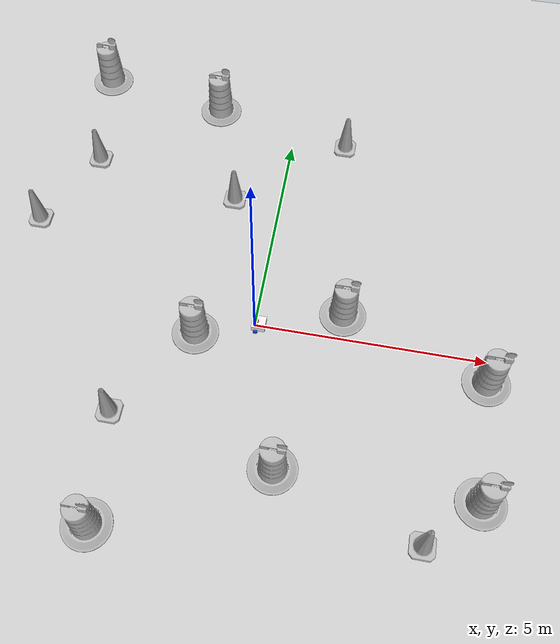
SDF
<sdf version="1.7">
 <world name="default">
  <light name="sun" type="directional">
   <pose>0 0 10 0 -0 0</pose>
   <diffuse>0.8 0.8 0.8 1</diffuse>
   <specular>0.2 0.2 0.2 1</specular>
   <attenuation>
    <range>1000</range>
    <constant>0.9</constant>
    <linear>0.01</linear>
    <quadratic>0.001</quadratic>
   </attenuation>
   <direction>-0.5 0.1 -0.9</direction>
   <spot><inner_angle>0</inner_angle><outer_angle>0</outer_angle><falloff>0</falloff></spot>
  </light>
  <model name="ground_plane">
   <static>1</static>
   <link name="link">
    <collision name="collision">
     <geometry><plane><normal>0 0 1</normal><size>100 100</size></plane></geometry>
     <surface><friction><ode><mu>100</mu><mu2>50</mu2></ode></friction></surface>
    </collision>
    <visual name="visual">
     <cast_shadows>0</cast_shadows>
     <geometry><plane><normal>0 0 1</normal><size>100 100</size></plane></geometry>
     <material>
      <script><uri>file://media/materials/scripts/gazebo.material</uri><name>Gazebo/Grey</name></script>
     </material>
    </visual>
   </link>
  </model>
  <gravity>0 0 -9.8</gravity>
  <magnetic_field>6e-06 2.3e-05 -4.2e-05</magnetic_field>
  <atmosphere type="adiabatic"/>
  <physics type="ode">
   <max_step_size>0.001</max_step_size>
   <real_time_factor>1</real_time_factor>
   <real_time_update_rate>1000</real_time_update_rate>
  </physics>
  <scene><ambient>0.4 0.4 0.4 1</ambient><background>0.7 0.7 0.7 1</background><shadows>1</shadows></scene>
  <audio><device>default</device></audio>
  <spherical_coordinates>
   <surface_model>EARTH_WGS84</surface_model>
   <latitude_deg>0</latitude_deg>
   <longitude_deg>0</longitude_deg>
   <elevation>0</elevation>
   <heading_deg>0</heading_deg>
  </spherical_coordinates>
  <model name="my_bot">
   <link name="base_link">
    <inertial>
     <pose>0.055714 0 0.078571 0 -0 0</pose>
     <mass>0.7</mass>
     <inertia>
      <ixx>0.0064169</ixx>
      <ixy>0</ixy>
      <ixz>0.00118929</ixz>
      <iyy>0.00745405</iyy>
      <iyz>0</iyz>
      <izz>0.00876214</izz>
     </inertia>
    </inertial>
    <collision name="base_link_fixed_joint_lump__chassis_collision">
     <pose>0.05 0 0.075 0 -0 0</pose>
     <geometry><box><size>0.3 0.3 0.15</size></box></geometry>
    </collision>
    <collision name="base_link_fixed_joint_lump__caster_wheel_collision_1">
     <pose>0.14 0 0 0 -0 0</pose>
     <geometry><sphere><radius>0.05</radius></sphere></geometry>
     <surface><friction><ode><mu>0.001</mu><mu2>0.001</mu2></ode></friction></surface>
    </collision>
    <collision name="base_link_fixed_joint_lump__laser_frame_collision_2">
     <pose>0 0 0.175 0 -0 0</pose>
     <geometry><cylinder><length>0.04</length><radius>0.05</radius></cylinder></geometry>
    </collision>
    <visual name="base_link_fixed_joint_lump__chassis_visual">
     <pose>0.05 0 0.075 0 -0 0</pose>
     <geometry><box><size>0.3 0.3 0.15</size></box></geometry>
     <material>
      <script><name>Gazebo/White</name><uri>file://media/materials/scripts/gazebo.material</uri></script>
     </material>
    </visual>
    <visual name="base_link_fixed_joint_lump__caster_wheel_visual_1">
     <pose>0.14 0 0 0 -0 0</pose>
     <geometry><sphere><radius>0.05</radius></sphere></geometry>
     <material>
      <script><name>Gazebo/Black</name><uri>file://media/materials/scripts/gazebo.material</uri></script>
     </material>
    </visual>
    <visual name="base_link_fixed_joint_lump__laser_frame_visual_2">
     <pose>0 0 0.175 0 -0 0</pose>
     <geometry><cylinder><length>0.04</length><radius>0.05</radius></cylinder></geometry>
     <material>
      <script><name>Gazebo/Red</name><uri>file://media/materials/scripts/gazebo.material</uri></script>
     </material>
    </visual>
    <sensor name="laser" type="ray">
     <visualize>1</visualize>
     <update_rate>10</update_rate>
     <ray>
      <scan>
       <horizontal>
        <samples>360</samples>
        <min_angle>-3.14</min_angle>
        <max_angle>3.14</max_angle>
        <resolution>1</resolution>
       </horizontal>
       <vertical><samples>1</samples><min_angle>0</min_angle><max_angle>0</max_angle></vertical>
      </scan>
      <range><min>0.3</min><max>12</max></range>
     </ray>
     <plugin name="laser_controller" filename="libgazebo_ros_ray_sensor.so">
      <ros><argument>~/out:=scan</argument></ros>
      <output_type>sensor_msgs/LaserScan</output_type>
      <frame_name>laser_frame</frame_name>
     </plugin>
     <pose>0 0 0.175 0 -0 0</pose>
    </sensor>
   </link>
   <joint name="left_wheel_joint" type="revolute">
    <pose relative_to="base_link">0 0.175 0 -1.5708 0 0</pose>
    <parent>base_link</parent>
    <child>left_wheel</child>
    <axis>
     <xyz>0 0 1</xyz>
     <limit><lower>-1e+16</lower><upper>1e+16</upper></limit>
     <dynamics><spring_reference>0</spring_reference><spring_stiffness>0</spring_stiffness></dynamics>
    </axis>
   </joint>
   <link name="left_wheel">
    <pose relative_to="left_wheel_joint">0 0 0 0 -0 0</pose>
    <inertial>
     <mass>0.1</mass>
     <inertia>
      <ixx>7.58333e-05</ixx>
      <ixy>0</ixy>
      <ixz>0</ixz>
      <iyy>7.58333e-05</iyy>
      <iyz>0</iyz>
      <izz>0.000125</izz>
     </inertia>
    </inertial>
    <collision name="left_wheel_collision">
     <geometry><cylinder><length>0.04</length><radius>0.05</radius></cylinder></geometry>
    </collision>
    <visual name="left_wheel_visual">
     <geometry><cylinder><length>0.04</length><radius>0.05</radius></cylinder></geometry>
     <material>
      <script><name>Gazebo/Blue</name><uri>file://media/materials/scripts/gazebo.material</uri></script>
     </material>
    </visual>
   </link>
   <joint name="right_wheel_joint" type="revolute">
    <pose relative_to="base_link">0 -0.175 0 1.5708 -0 0</pose>
    <parent>base_link</parent>
    <child>right_wheel</child>
    <axis>
     <xyz>0 0 -1</xyz>
     <limit><lower>-1e+16</lower><upper>1e+16</upper></limit>
     <dynamics><spring_reference>0</spring_reference><spring_stiffness>0</spring_stiffness></dynamics>
    </axis>
   </joint>
   <link name="right_wheel">
    <pose relative_to="right_wheel_joint">0 0 0 0 -0 0</pose>
    <inertial>
     <mass>0.1</mass>
     <inertia>
      <ixx>7.58333e-05</ixx>
      <ixy>0</ixy>
      <ixz>0</ixz>
      <iyy>7.58333e-05</iyy>
      <iyz>0</iyz>
      <izz>0.000125</izz>
     </inertia>
    </inertial>
    <collision name="right_wheel_collision">
     <geometry><cylinder><length>0.04</length><radius>0.05</radius></cylinder></geometry>
    </collision>
    <visual name="right_wheel_visual">
     <geometry><cylinder><length>0.04</length><radius>0.05</radius></cylinder></geometry>
     <material>
      <script><name>Gazebo/Blue</name><uri>file://media/materials/scripts/gazebo.material</uri></script>
     </material>
    </visual>
   </link>
   <static>0</static>
   <plugin name="diff_drive" filename="libgazebo_ros_diff_drive.so">
    <left_joint>left_wheel_joint</left_joint>
    <right_joint>right_wheel_joint</right_joint>
    <wheel_separation>0.35</wheel_separation>
    <wheel_diameter>0.1</wheel_diameter>
    <max_wheel_torque>200</max_wheel_torque>
    <max_wheel_acceleration>10.0</max_wheel_acceleration>
    <odometry_frame>odom</odometry_frame>
    <robot_base_frame>base_link</robot_base_frame>
    <publish_odom>1</publish_odom>
    <publish_odom_tf>1</publish_odom_tf>
    <publish_wheel_tf>1</publish_wheel_tf>
   </plugin>
   <pose>0.047709 0.000317 0.05 0 1.2e-05 0.00144</pose>
  </model>
  <model name="Construction Barrel">
   <link name="link">
    <inertial>
     <pose>0 0 0.4 0 -0 0</pose>
     <mass>500</mass>
     <inertia><ixx>51.2096</ixx><iyy>51.2096</iyy><izz>25</izz><ixy>0</ixy><ixz>0</ixz><iyz>0</iyz></inertia>
    </inertial>
    <collision name="collision">
     <geometry><mesh><uri>model://construction_barrel/meshes/construction_barrel.dae</uri></mesh></geometry>
    </collision>
    <visual name="visual">
     <geometry><mesh><uri>model://construction_barrel/meshes/construction_barrel.dae</uri></mesh></geometry>
    </visual>
   </link>
   <pose>-1.22352 -0.401188 1e-06 3e-06 2e-06 -2.2e-05</pose>
  </model>
  <model name="Construction Barrel_clone">
   <link name="link">
    <inertial>
     <pose>0 0 0.4 0 -0 0</pose>
     <mass>500</mass>
     <inertia><ixx>51.2096</ixx><iyy>51.2096</iyy><izz>25</izz><ixy>0</ixy><ixz>0</ixz><iyz>0</iyz></inertia>
    </inertial>
    <collision name="collision">
     <geometry><mesh><uri>model://construction_barrel/meshes/construction_barrel.dae</uri></mesh></geometry>
    </collision>
    <visual name="visual">
     <geometry><mesh><uri>model://construction_barrel/meshes/construction_barrel.dae</uri></mesh></geometry>
    </visual>
   </link>
   <pose>-5.00008 6.41451 1e-06 3e-06 2e-06 -2.3e-05</pose>
  </model>
  <model name="Construction Barrel_clone_0">
   <link name="link">
    <inertial>
     <pose>0 0 0.4 0 -0 0</pose>
     <mass>500</mass>
     <inertia><ixx>51.2096</ixx><iyy>51.2096</iyy><izz>25</izz><ixy>0</ixy><ixz>0</ixz><iyz>0</iyz></inertia>
    </inertial>
    <collision name="collision">
     <geometry><mesh><uri>model://construction_barrel/meshes/construction_barrel.dae</uri></mesh></geometry>
    </collision>
    <visual name="visual">
     <geometry><mesh><uri>model://construction_barrel/meshes/construction_barrel.dae</uri></mesh></geometry>
    </visual>
   </link>
   <pose>-1.98893 5.89236 1e-06 3e-06 2e-06 -2.2e-05</pose>
  </model>
  <model name="Construction Barrel_clone_1">
   <link name="link">
    <inertial>
     <pose>0 0 0.4 0 -0 0</pose>
     <mass>500</mass>
     <inertia><ixx>51.2096</ixx><iyy>51.2096</iyy><izz>25</izz><ixy>0</ixy><ixz>0</ixz><iyz>0</iyz></inertia>
    </inertial>
    <collision name="collision">
     <geometry><mesh><uri>model://construction_barrel/meshes/construction_barrel.dae</uri></mesh></geometry>
    </collision>
    <visual name="visual">
     <geometry><mesh><uri>model://construction_barrel/meshes/construction_barrel.dae</uri></mesh></geometry>
    </visual>
   </link>
   <pose>1.85261 0.579564 -0 0 0 -2e-05</pose>
  </model>
  <model name="Construction Barrel_clone_2">
   <link name="link">
    <inertial>
     <pose>0 0 0.4 0 -0 0</pose>
     <mass>500</mass>
     <inertia><ixx>51.2096</ixx><iyy>51.2096</iyy><izz>25</izz><ixy>0</ixy><ixz>0</ixz><iyz>0</iyz></inertia>
    </inertial>
    <collision name="collision">
     <geometry><mesh><uri>model://construction_barrel/meshes/construction_barrel.dae</uri></mesh></geometry>
    </collision>
    <visual name="visual">
     <geometry><mesh><uri>model://construction_barrel/meshes/construction_barrel.dae</uri></mesh></geometry>
    </visual>
   </link>
   <pose>0.941562 -3.0529 -2e-06 8e-06 -4e-06 -1.9e-05</pose>
  </model>
  <model name="Construction Barrel_clone_3">
   <link name="link">
    <inertial>
     <pose>0 0 0.4 0 -0 0</pose>
     <mass>500</mass>
     <inertia><ixx>51.2096</ixx><iyy>51.2096</iyy><izz>25</izz><ixy>0</ixy><ixz>0</ixz><iyz>0</iyz></inertia>
    </inertial>
    <collision name="collision">
     <geometry><mesh><uri>model://construction_barrel/meshes/construction_barrel.dae</uri></mesh></geometry>
    </collision>
    <visual name="visual">
     <geometry><mesh><uri>model://construction_barrel/meshes/construction_barrel.dae</uri></mesh></geometry>
    </visual>
   </link>
   <pose>4.99994 -0.475417 -1e-06 3e-06 7e-06 -1.7e-05</pose>
  </model>
  <model name="Construction Barrel_clone_4">
   <link name="link">
    <inertial>
     <pose>0 0 0.4 0 -0 0</pose>
     <mass>500</mass>
     <inertia><ixx>51.2096</ixx><iyy>51.2096</iyy><izz>25</izz><ixy>0</ixy><ixz>0</ixz><iyz>0</iyz></inertia>
    </inertial>
    <collision name="collision">
     <geometry><mesh><uri>model://construction_barrel/meshes/construction_barrel.dae</uri></mesh></geometry>
    </collision>
    <visual name="visual">
     <geometry><mesh><uri>model://construction_barrel/meshes/construction_barrel.dae</uri></mesh></geometry>
    </visual>
   </link>
   <pose>-2.34068 -4.72323 1e-06 3e-06 2e-06 -2.2e-05</pose>
  </model>
  <model name="Construction Barrel_clone_5">
   <link name="link">
    <inertial>
     <pose>0 0 0.4 0 -0 0</pose>
     <mass>500</mass>
     <inertia><ixx>51.2096</ixx><iyy>51.2096</iyy><izz>25</izz><ixy>0</ixy><ixz>0</ixz><iyz>0</iyz></inertia>
    </inertial>
    <collision name="collision">
     <geometry><mesh><uri>model://construction_barrel/meshes/construction_barrel.dae</uri></mesh></geometry>
    </collision>
    <visual name="visual">
     <geometry><mesh><uri>model://construction_barrel/meshes/construction_barrel.dae</uri></mesh></geometry>
    </visual>
   </link>
   <pose>4.99995 -3.00001 -1e-06 4e-06 -1e-06 -2.6e-05</pose>
  </model>
  <model name="Construction Cone">
   <link name="link">
    <collision name="collision">
     <geometry>
      <mesh><scale>10 10 10</scale><uri>model://construction_cone/meshes/construction_cone.dae</uri></mesh>
     </geometry>
    </collision>
    <visual name="visual">
     <geometry>
      <mesh><scale>10 10 10</scale><uri>model://construction_cone/meshes/construction_cone.dae</uri></mesh>
     </geometry>
    </visual>
    <inertial>
     <inertia><ixx>1</ixx><ixy>0</ixy><ixz>0</ixz><iyy>1</iyy><iyz>0</iyz><izz>1</izz></inertia>
     <mass>1</mass>
    </inertial>
   </link>
   <pose>-2.5474 -2.45925 -0 0 -0 0</pose>
  </model>
  <model name="Construction Cone_0">
   <link name="link">
    <collision name="collision">
     <geometry>
      <mesh><scale>10 10 10</scale><uri>model://construction_cone/meshes/construction_cone.dae</uri></mesh>
     </geometry>
    </collision>
    <visual name="visual">
     <geometry>
      <mesh><scale>10 10 10</scale><uri>model://construction_cone/meshes/construction_cone.dae</uri></mesh>
     </geometry>
    </visual>
    <inertial>
     <inertia><ixx>1</ixx><ixy>0</ixy><ixz>0</ixz><iyy>1</iyy><iyz>0</iyz><izz>1</izz></inertia>
     <mass>1</mass>
    </inertial>
   </link>
   <pose>1.29772 5.23175 -1e-05 -1e-06 0 0</pose>
  </model>
  <model name="Construction Cone_0_clone">
   <link name="link">
    <collision name="collision">
     <geometry>
      <mesh><scale>10 10 10</scale><uri>model://construction_cone/meshes/construction_cone.dae</uri></mesh>
     </geometry>
    </collision>
    <visual name="visual">
     <geometry>
      <mesh><scale>10 10 10</scale><uri>model://construction_cone/meshes/construction_cone.dae</uri></mesh>
     </geometry>
    </visual>
    <inertial>
     <inertia><ixx>1</ixx><ixy>0</ixy><ixz>0</ixz><iyy>1</iyy><iyz>0</iyz><izz>1</izz></inertia>
     <mass>1</mass>
    </inertial>
   </link>
   <pose>-4.57183 3.82824 -0 -0 -0 -0</pose>
  </model>
  <model name="Construction Cone_0_clone_0">
   <link name="link">
    <collision name="collision">
     <geometry>
      <mesh><scale>10 10 10</scale><uri>model://construction_cone/meshes/construction_cone.dae</uri></mesh>
     </geometry>
    </collision>
    <visual name="visual">
     <geometry>
      <mesh><scale>10 10 10</scale><uri>model://construction_cone/meshes/construction_cone.dae</uri></mesh>
     </geometry>
    </visual>
    <inertial>
     <inertia><ixx>1</ixx><ixy>0</ixy><ixz>0</ixz><iyy>1</iyy><iyz>0</iyz><izz>1</izz></inertia>
     <mass>1</mass>
    </inertial>
   </link>
   <pose>3.9557 -3.99614 -1e-05 -1e-06 0 0</pose>
  </model>
  <model name="Construction Cone_0_clone_1">
   <link name="link">
    <collision name="collision">
     <geometry>
      <mesh><scale>10 10 10</scale><uri>model://construction_cone/meshes/construction_cone.dae</uri></mesh>
     </geometry>
    </collision>
    <visual name="visual">
     <geometry>
      <mesh><scale>10 10 10</scale><uri>model://construction_cone/meshes/construction_cone.dae</uri></mesh>
     </geometry>
    </visual>
    <inertial>
     <inertia><ixx>1</ixx><ixy>0</ixy><ixz>0</ixz><iyy>1</iyy><iyz>0</iyz><izz>1</izz></inertia>
     <mass>1</mass>
    </inertial>
   </link>
   <pose>-1.08001 3.2111 -0 0 -0 0</pose>
  </model>
  <model name="Construction Cone_0_clone_2">
   <link name="link">
    <collision name="collision">
     <geometry>
      <mesh><scale>10 10 10</scale><uri>model://construction_cone/meshes/construction_cone.dae</uri></mesh>
     </geometry>
    </collision>
    <visual name="visual">
     <geometry>
      <mesh><scale>10 10 10</scale><uri>model://construction_cone/meshes/construction_cone.dae</uri></mesh>
     </geometry>
    </visual>
    <inertial>
     <inertia><ixx>1</ixx><ixy>0</ixy><ixz>0</ixz><iyy>1</iyy><iyz>0</iyz><izz>1</izz></inertia>
     <mass>1</mass>
    </inertial>
   </link>
   <pose>-5.45968 1.87328 -0 0 -1e-06 0</pose>
  </model>
 </world>
</sdf>
